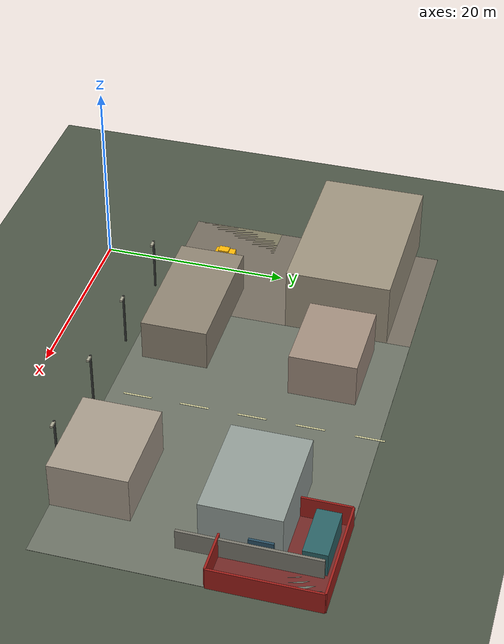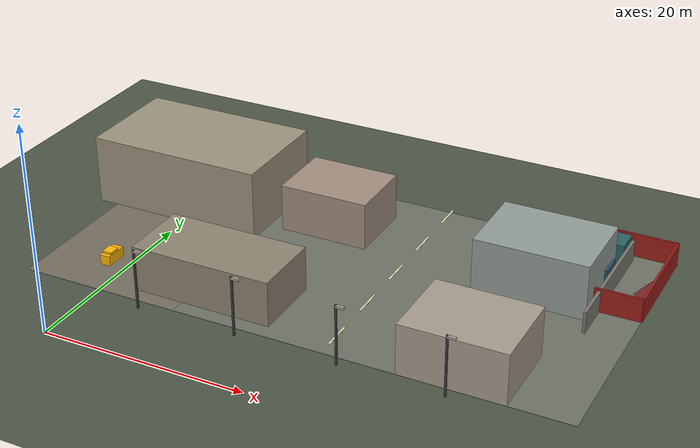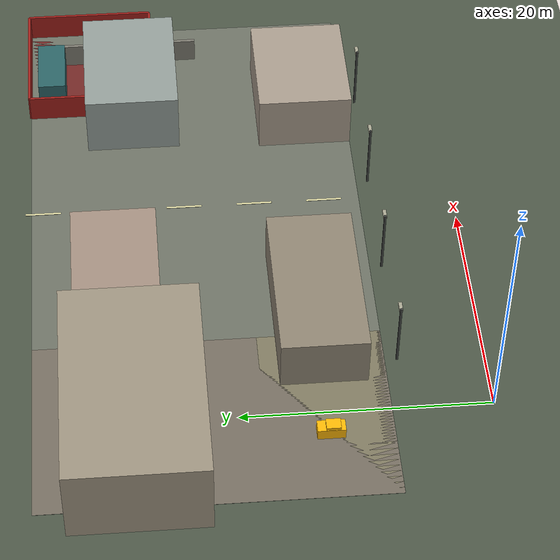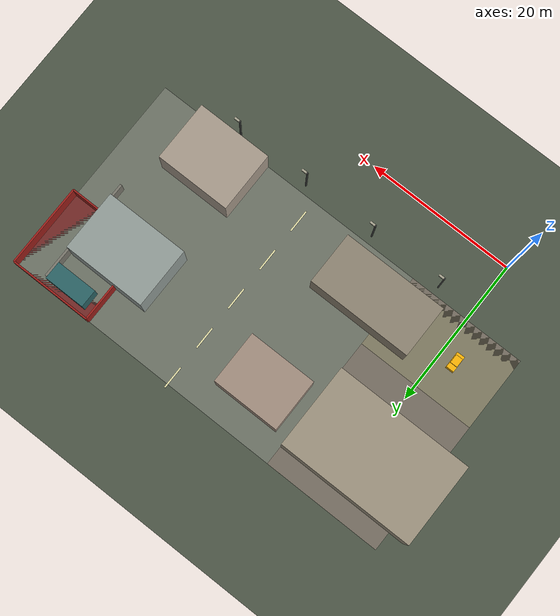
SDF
<sdf version="1.9">
 <world name="gsi_search_world_v2_suburban">
  <model name="ground_plane">
   <static>true</static>
   <link name="link">
    <collision name="collision">
     <geometry><plane><normal>0 0 1</normal><size>130 110</size></plane></geometry>
    </collision>
    <visual name="visual">
     <geometry><plane><normal>0 0 1</normal><size>130 110</size></plane></geometry>
     <material>
      <ambient>0.3 0.34 0.28 1</ambient>
      <diffuse>0.3 0.34 0.28 1</diffuse>
      <specular>0.12 0.12 0.12 1</specular>
     </material>
    </visual>
   </link>
  </model>
  <model name="semantic-residential-east">
   <static>true</static>
   <pose>27 22 0.015 0 0 0</pose>
   <link name="link">
    <visual name="visual">
     <geometry><box><size>38 28 0.02</size></box></geometry>
     <cast_shadows>false</cast_shadows>
     <material>
      <ambient>0.43 0.45 0.4 1</ambient>
      <diffuse>0.43 0.45 0.4 1</diffuse>
      <specular>0.12 0.12 0.12 1</specular>
     </material>
    </visual>
   </link>
  </model>
  <model name="semantic-local-shops">
   <static>true</static>
   <pose>0 22 0.015 0 0 0</pose>
   <link name="link">
    <visual name="visual">
     <geometry><box><size>16 28 0.02</size></box></geometry>
     <cast_shadows>false</cast_shadows>
     <material>
      <ambient>0.46 0.43 0.38 1</ambient>
      <diffuse>0.46 0.43 0.38 1</diffuse>
      <specular>0.12 0.12 0.12 1</specular>
     </material>
    </visual>
   </link>
  </model>
  <model name="semantic-school-entrance">
   <static>true</static>
   <pose>0 13 0.015 0 0 0</pose>
   <link name="link">
    <visual name="visual">
     <geometry><box><size>16 10 0.02</size></box></geometry>
     <cast_shadows>false</cast_shadows>
     <material>
      <ambient>0.5 0.48 0.38 1</ambient>
      <diffuse>0.5 0.48 0.38 1</diffuse>
      <specular>0.12 0.12 0.12 1</specular>
     </material>
    </visual>
   </link>
  </model>
  <model name="semantic-restricted-substation">
   <static>true</static>
   <pose>40.5 30.5 0.015 0 0 0</pose>
   <link name="link">
    <visual name="visual">
     <geometry><box><size>11 11 0.02</size></box></geometry>
     <cast_shadows>false</cast_shadows>
     <material>
      <ambient>0.45 0.16 0.15 1</ambient>
      <diffuse>0.45 0.16 0.15 1</diffuse>
      <specular>0.12 0.12 0.12 1</specular>
     </material>
    </visual>
   </link>
  </model>
  <model name="side-street-marking-09">
   <static>true</static>
   <pose>23 11 0.04 0 0 0</pose>
   <link name="link">
    <visual name="visual">
     <geometry><box><size>0.18 3 0.025</size></box></geometry>
     <cast_shadows>false</cast_shadows>
     <material>
      <ambient>0.92 0.9 0.68 1</ambient>
      <diffuse>0.92 0.9 0.68 1</diffuse>
      <specular>0.12 0.12 0.12 1</specular>
     </material>
    </visual>
   </link>
  </model>
  <model name="side-street-marking-10">
   <static>true</static>
   <pose>23 17 0.04 0 0 0</pose>
   <link name="link">
    <visual name="visual">
     <geometry><box><size>0.18 3 0.025</size></box></geometry>
     <cast_shadows>false</cast_shadows>
     <material>
      <ambient>0.92 0.9 0.68 1</ambient>
      <diffuse>0.92 0.9 0.68 1</diffuse>
      <specular>0.12 0.12 0.12 1</specular>
     </material>
    </visual>
   </link>
  </model>
  <model name="side-street-marking-11">
   <static>true</static>
   <pose>23 23 0.04 0 0 0</pose>
   <link name="link">
    <visual name="visual">
     <geometry><box><size>0.18 3 0.025</size></box></geometry>
     <cast_shadows>false</cast_shadows>
     <material>
      <ambient>0.92 0.9 0.68 1</ambient>
      <diffuse>0.92 0.9 0.68 1</diffuse>
      <specular>0.12 0.12 0.12 1</specular>
     </material>
    </visual>
   </link>
  </model>
  <model name="side-street-marking-12">
   <static>true</static>
   <pose>23 29 0.04 0 0 0</pose>
   <link name="link">
    <visual name="visual">
     <geometry><box><size>0.18 3 0.025</size></box></geometry>
     <cast_shadows>false</cast_shadows>
     <material>
      <ambient>0.92 0.9 0.68 1</ambient>
      <diffuse>0.92 0.9 0.68 1</diffuse>
      <specular>0.12 0.12 0.12 1</specular>
     </material>
    </visual>
   </link>
  </model>
  <model name="side-street-marking-13">
   <static>true</static>
   <pose>23 35 0.04 0 0 0</pose>
   <link name="link">
    <visual name="visual">
     <geometry><box><size>0.18 3 0.025</size></box></geometry>
     <cast_shadows>false</cast_shadows>
     <material>
      <ambient>0.92 0.9 0.68 1</ambient>
      <diffuse>0.92 0.9 0.68 1</diffuse>
      <specular>0.12 0.12 0.12 1</specular>
     </material>
    </visual>
   </link>
  </model>
  <model name="school">
   <static>true</static>
   <pose>-1 28 3.5 0 0 0</pose>
   <link name="link">
    <collision name="collision"><geometry><box><size>18 11 7</size></box></geometry></collision>
    <visual name="visual">
     <geometry><box><size>18 11 7</size></box></geometry>
     <material>
      <ambient>0.62 0.58 0.5 1</ambient>
      <diffuse>0.62 0.58 0.5 1</diffuse>
      <specular>0.12 0.12 0.12 1</specular>
     </material>
    </visual>
   </link>
  </model>
  <model name="shop-row">
   <static>true</static>
   <pose>10 13 2.25 0 0 0</pose>
   <link name="link">
    <collision name="collision"><geometry><box><size>14 7 4.5</size></box></geometry></collision>
    <visual name="visual">
     <geometry><box><size>14 7 4.5</size></box></geometry>
     <material>
      <ambient>0.56 0.52 0.45 1</ambient>
      <diffuse>0.56 0.52 0.45 1</diffuse>
      <specular>0.12 0.12 0.12 1</specular>
     </material>
    </visual>
   </link>
  </model>
  <model name="house-a">
   <static>true</static>
   <pose>35 12 2.5 0 0 0</pose>
   <link name="link">
    <collision name="collision"><geometry><box><size>10 8 5</size></box></geometry></collision>
    <visual name="visual">
     <geometry><box><size>10 8 5</size></box></geometry>
     <material>
      <ambient>0.66 0.61 0.55 1</ambient>
      <diffuse>0.66 0.61 0.55 1</diffuse>
      <specular>0.12 0.12 0.12 1</specular>
     </material>
    </visual>
   </link>
  </model>
  <model name="house-b">
   <static>true</static>
   <pose>36 27 2.75 0 0 0</pose>
   <link name="link">
    <collision name="collision"><geometry><box><size>11 8 5.5</size></box></geometry></collision>
    <visual name="visual">
     <geometry><box><size>11 8 5.5</size></box></geometry>
     <material>
      <ambient>0.58 0.62 0.6 1</ambient>
      <diffuse>0.58 0.62 0.6 1</diffuse>
      <specular>0.12 0.12 0.12 1</specular>
     </material>
    </visual>
   </link>
  </model>
  <model name="house-c">
   <static>true</static>
   <pose>14 29 2.4 0 0 0</pose>
   <link name="link">
    <collision name="collision"><geometry><box><size>9 7 4.8</size></box></geometry></collision>
    <visual name="visual">
     <geometry><box><size>9 7 4.8</size></box></geometry>
     <material>
      <ambient>0.64 0.56 0.5 1</ambient>
      <diffuse>0.64 0.56 0.5 1</diffuse>
      <specular>0.12 0.12 0.12 1</specular>
     </material>
    </visual>
   </link>
  </model>
  <model name="container-01">
   <static>true</static>
   <pose>39 29 1.3 0 0 0</pose>
   <link name="link">
    <collision name="collision"><geometry><box><size>5.5 2.4 2.6</size></box></geometry></collision>
    <visual name="visual">
     <geometry><box><size>5.5 2.4 2.6</size></box></geometry>
     <material>
      <ambient>0.17 0.32 0.4 1</ambient>
      <diffuse>0.17 0.32 0.4 1</diffuse>
      <specular>0.12 0.12 0.12 1</specular>
     </material>
    </visual>
   </link>
  </model>
  <model name="container-02">
   <static>true</static>
   <pose>39 34 1.3 0 0 0</pose>
   <link name="link">
    <collision name="collision"><geometry><box><size>5.5 2.4 2.6</size></box></geometry></collision>
    <visual name="visual">
     <geometry><box><size>5.5 2.4 2.6</size></box></geometry>
     <material>
      <ambient>0.17 0.39 0.4 1</ambient>
      <diffuse>0.17 0.39 0.4 1</diffuse>
      <specular>0.12 0.12 0.12 1</specular>
     </material>
    </visual>
   </link>
  </model>
  <model name="substation-wall">
   <static>true</static>
   <pose>42 28 1.1 0 0 0</pose>
   <link name="link">
    <collision name="collision"><geometry><box><size>0.3 14 2.2</size></box></geometry></collision>
    <visual name="visual">
     <geometry><box><size>0.3 14 2.2</size></box></geometry>
     <material>
      <ambient>0.48 0.47 0.43 1</ambient>
      <diffuse>0.48 0.47 0.43 1</diffuse>
      <specular>0.12 0.12 0.12 1</specular>
     </material>
    </visual>
   </link>
  </model>
  <model name="utility-pole-05">
   <static>true</static>
   <pose>5 7 3 0 0 0</pose>
   <link name="link">
    <collision name="collision"><geometry><box><size>0.18 0.18 6</size></box></geometry></collision>
    <visual name="visual">
     <geometry><box><size>0.18 0.18 6</size></box></geometry>
     <material>
      <ambient>0.24 0.25 0.24 1</ambient>
      <diffuse>0.24 0.25 0.24 1</diffuse>
      <specular>0.12 0.12 0.12 1</specular>
     </material>
    </visual>
   </link>
  </model>
  <model name="utility-pole-05-lamp">
   <static>true</static>
   <pose>5.38 7 5.85 0 0 0</pose>
   <link name="link">
    <visual name="visual">
     <geometry><box><size>0.8 0.28 0.22</size></box></geometry>
     <material>
      <ambient>0.66 0.65 0.57 1</ambient>
      <diffuse>0.66 0.65 0.57 1</diffuse>
      <specular>0.12 0.12 0.12 1</specular>
     </material>
    </visual>
   </link>
  </model>
  <model name="utility-pole-06">
   <static>true</static>
   <pose>15 7 3 0 0 0</pose>
   <link name="link">
    <collision name="collision"><geometry><box><size>0.18 0.18 6</size></box></geometry></collision>
    <visual name="visual">
     <geometry><box><size>0.18 0.18 6</size></box></geometry>
     <material>
      <ambient>0.24 0.25 0.24 1</ambient>
      <diffuse>0.24 0.25 0.24 1</diffuse>
      <specular>0.12 0.12 0.12 1</specular>
     </material>
    </visual>
   </link>
  </model>
  <model name="utility-pole-06-lamp">
   <static>true</static>
   <pose>15.38 7 5.85 0 0 0</pose>
   <link name="link">
    <visual name="visual">
     <geometry><box><size>0.8 0.28 0.22</size></box></geometry>
     <material>
      <ambient>0.66 0.65 0.57 1</ambient>
      <diffuse>0.66 0.65 0.57 1</diffuse>
      <specular>0.12 0.12 0.12 1</specular>
     </material>
    </visual>
   </link>
  </model>
  <model name="utility-pole-07">
   <static>true</static>
   <pose>25 7 3 0 0 0</pose>
   <link name="link">
    <collision name="collision"><geometry><box><size>0.18 0.18 6</size></box></geometry></collision>
    <visual name="visual">
     <geometry><box><size>0.18 0.18 6</size></box></geometry>
     <material>
      <ambient>0.24 0.25 0.24 1</ambient>
      <diffuse>0.24 0.25 0.24 1</diffuse>
      <specular>0.12 0.12 0.12 1</specular>
     </material>
    </visual>
   </link>
  </model>
  <model name="utility-pole-07-lamp">
   <static>true</static>
   <pose>25.38 7 5.85 0 0 0</pose>
   <link name="link">
    <visual name="visual">
     <geometry><box><size>0.8 0.28 0.22</size></box></geometry>
     <material>
      <ambient>0.66 0.65 0.57 1</ambient>
      <diffuse>0.66 0.65 0.57 1</diffuse>
      <specular>0.12 0.12 0.12 1</specular>
     </material>
    </visual>
   </link>
  </model>
  <model name="utility-pole-08">
   <static>true</static>
   <pose>35 7 3 0 0 0</pose>
   <link name="link">
    <collision name="collision"><geometry><box><size>0.18 0.18 6</size></box></geometry></collision>
    <visual name="visual">
     <geometry><box><size>0.18 0.18 6</size></box></geometry>
     <material>
      <ambient>0.24 0.25 0.24 1</ambient>
      <diffuse>0.24 0.25 0.24 1</diffuse>
      <specular>0.12 0.12 0.12 1</specular>
     </material>
    </visual>
   </link>
  </model>
  <model name="utility-pole-08-lamp">
   <static>true</static>
   <pose>35.38 7 5.85 0 0 0</pose>
   <link name="link">
    <visual name="visual">
     <geometry><box><size>0.8 0.28 0.22</size></box></geometry>
     <material>
      <ambient>0.66 0.65 0.57 1</ambient>
      <diffuse>0.66 0.65 0.57 1</diffuse>
      <specular>0.12 0.12 0.12 1</specular>
     </material>
    </visual>
   </link>
  </model>
  <model name="restricted-substation-fence-south">
   <static>true</static>
   <pose>40.5 25 1.2 0 0 0</pose>
   <link name="link">
    <collision name="collision"><geometry><box><size>11 0.22 2.4</size></box></geometry></collision>
    <visual name="visual">
     <geometry><box><size>11 0.22 2.4</size></box></geometry>
     <material>
      <ambient>0.62 0.12 0.1 1</ambient>
      <diffuse>0.62 0.12 0.1 1</diffuse>
      <specular>0.12 0.12 0.12 1</specular>
     </material>
    </visual>
   </link>
  </model>
  <model name="restricted-substation-fence-north">
   <static>true</static>
   <pose>40.5 36 1.2 0 0 0</pose>
   <link name="link">
    <collision name="collision"><geometry><box><size>11 0.22 2.4</size></box></geometry></collision>
    <visual name="visual">
     <geometry><box><size>11 0.22 2.4</size></box></geometry>
     <material>
      <ambient>0.62 0.12 0.1 1</ambient>
      <diffuse>0.62 0.12 0.1 1</diffuse>
      <specular>0.12 0.12 0.12 1</specular>
     </material>
    </visual>
   </link>
  </model>
  <model name="restricted-substation-fence-west">
   <static>true</static>
   <pose>35 30.5 1.2 0 0 0</pose>
   <link name="link">
    <collision name="collision"><geometry><box><size>0.22 11 2.4</size></box></geometry></collision>
    <visual name="visual">
     <geometry><box><size>0.22 11 2.4</size></box></geometry>
     <material>
      <ambient>0.62 0.12 0.1 1</ambient>
      <diffuse>0.62 0.12 0.1 1</diffuse>
      <specular>0.12 0.12 0.12 1</specular>
     </material>
    </visual>
   </link>
  </model>
  <model name="restricted-substation-fence-east">
   <static>true</static>
   <pose>46 30.5 1.2 0 0 0</pose>
   <link name="link">
    <collision name="collision"><geometry><box><size>0.22 11 2.4</size></box></geometry></collision>
    <visual name="visual">
     <geometry><box><size>0.22 11 2.4</size></box></geometry>
     <material>
      <ambient>0.62 0.12 0.1 1</ambient>
      <diffuse>0.62 0.12 0.1 1</diffuse>
      <specular>0.12 0.12 0.12 1</specular>
     </material>
    </visual>
   </link>
  </model>
  <model name="yellow_search_van">
   <static>true</static>
   <pose>-2 13 0 0 0 1.5708</pose>
   <link name="body">
    <collision name="body_collision">
     <pose>0 0 0.5 0 0 0</pose>
     <geometry><box><size>2.2 1.05 1.0</size></box></geometry>
    </collision>
    <visual name="yellow_body">
     <pose>0 0 0.5 0 0 0</pose>
     <geometry><box><size>2.2 1.05 1.0</size></box></geometry>
     <material>
      <ambient>1 0.72 0.02 1</ambient>
      <diffuse>1 0.72 0.02 1</diffuse>
      <specular>0.12 0.12 0.12 1</specular>
     </material>
    </visual>
    <visual name="roof">
     <pose>-0.15 0 1.05 0 0 0</pose>
     <geometry><box><size>1.15 0.94 0.35</size></box></geometry>
     <material>
      <ambient>1 0.72 0.02 1</ambient>
      <diffuse>1 0.72 0.02 1</diffuse>
      <specular>0.12 0.12 0.12 1</specular>
     </material>
    </visual>
   </link>
  </model>
 </world>
</sdf>
